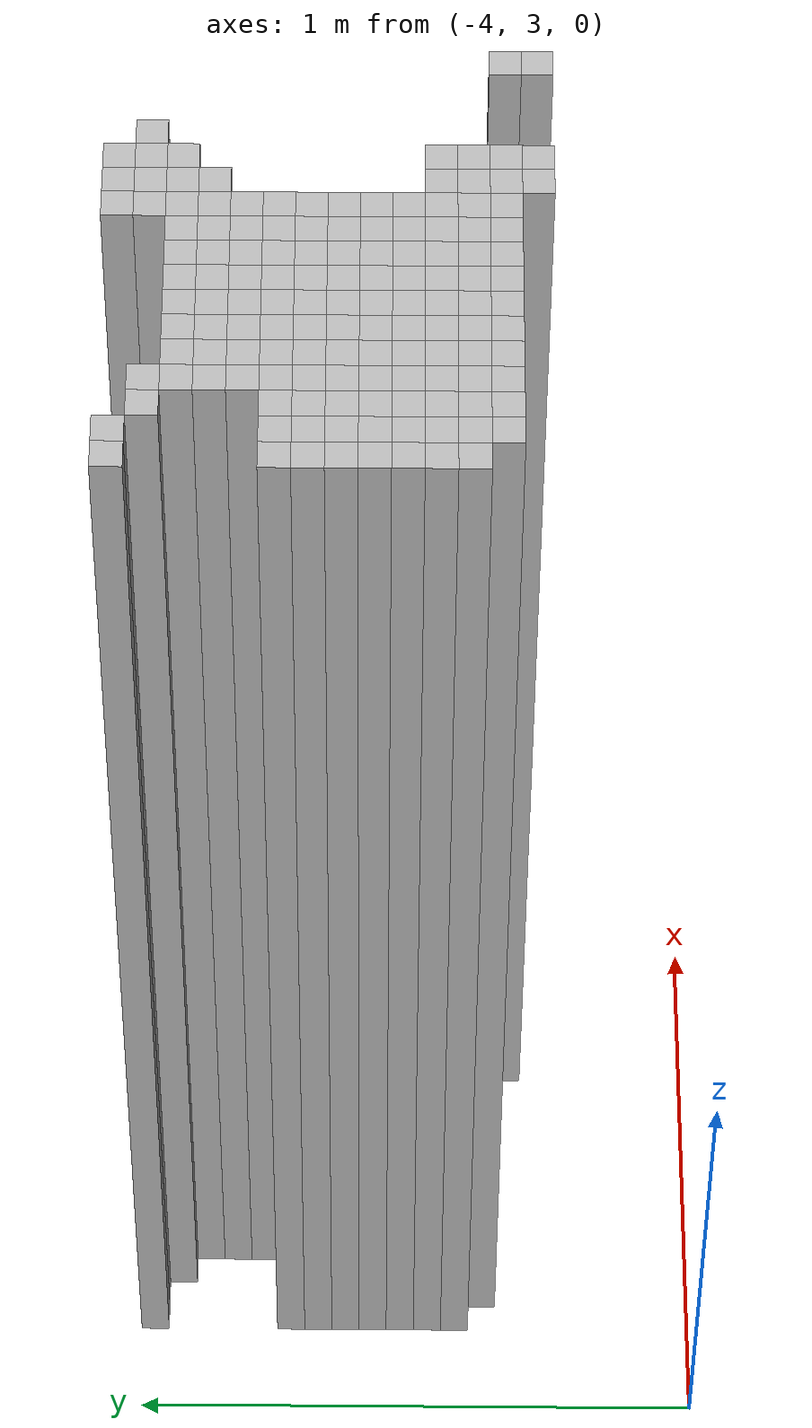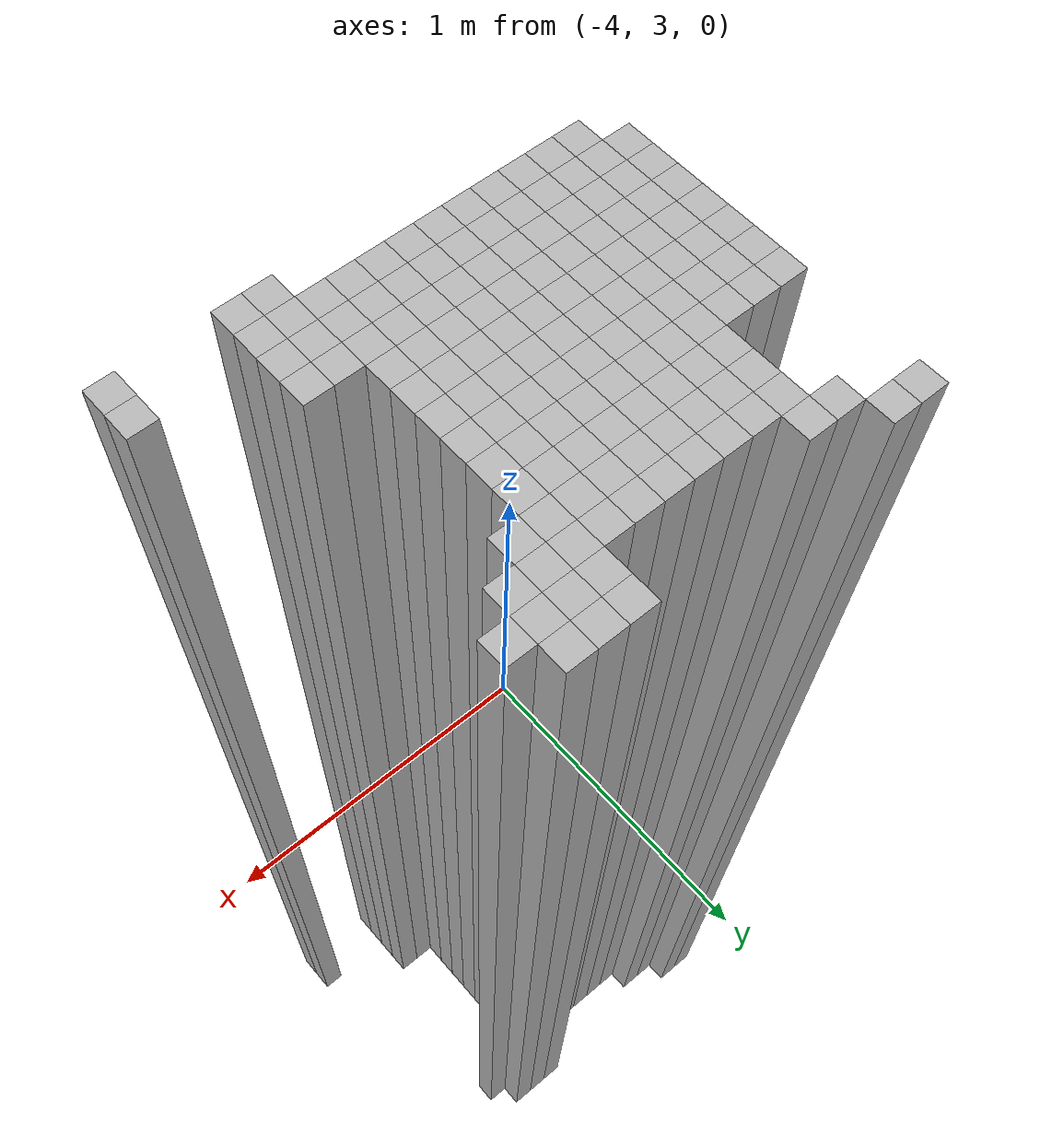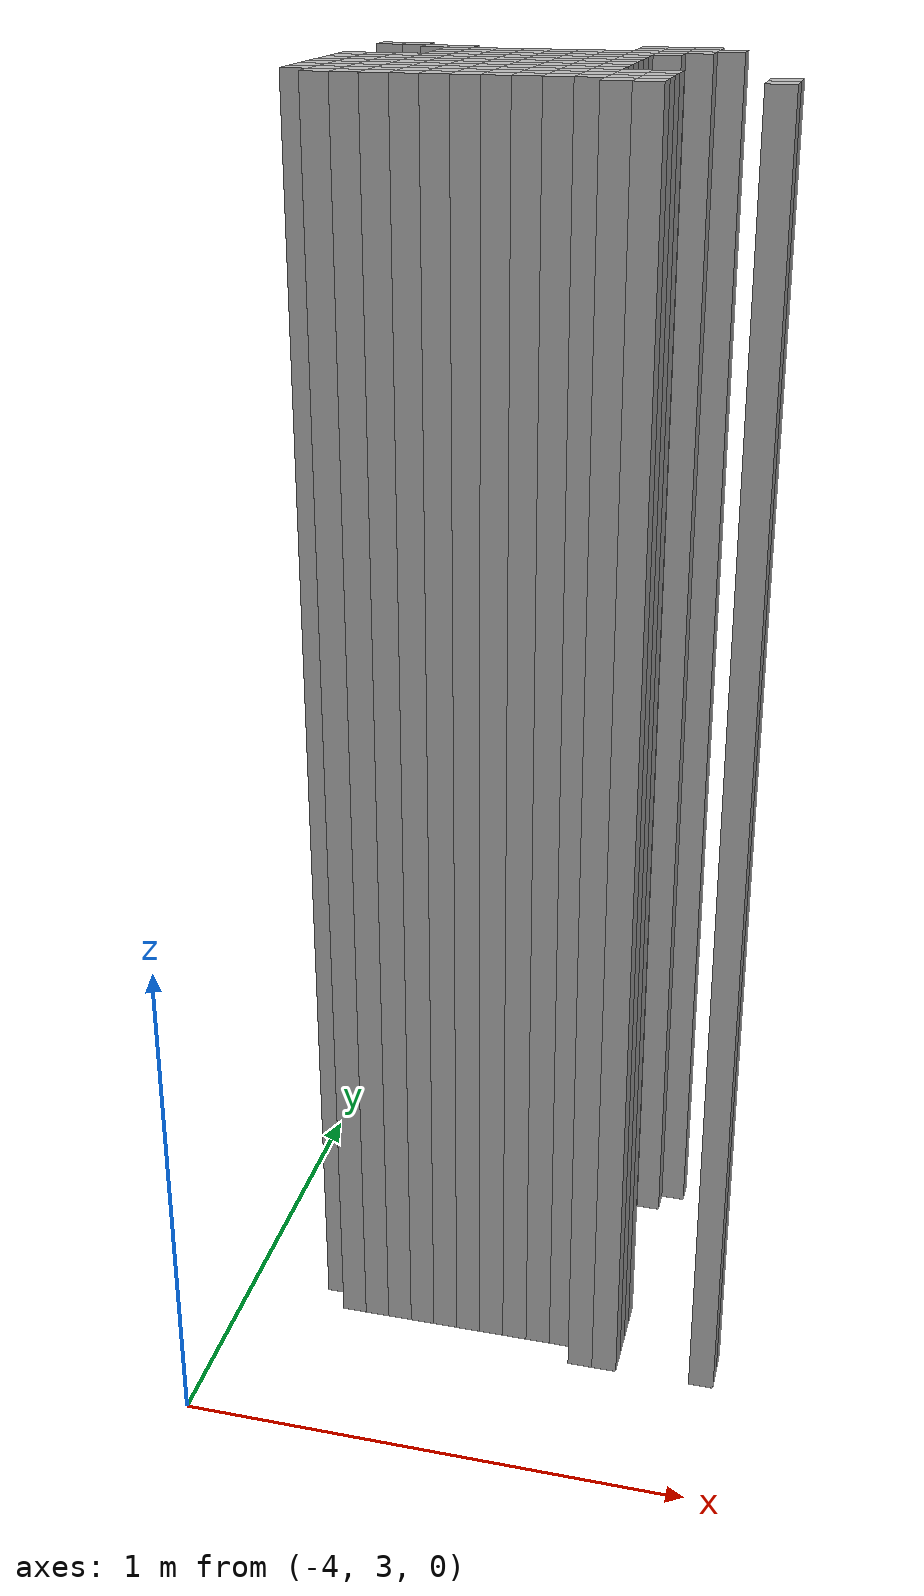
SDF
<sdf version="1.9">
 <world name="map_world">
  <model name="wall_147_74">
   <static>true</static>
   <pose>-3.811 3.980 1.250 0 0 0</pose>
   <link name="link">
    <collision name="collision"><geometry><box><size>0.050 0.050 2.500</size></box></geometry></collision>
    <visual name="visual"><geometry><box><size>0.050 0.050 2.500</size></box></geometry></visual>
   </link>
  </model>
  <model name="wall_148_74">
   <static>true</static>
   <pose>-3.761 3.980 1.250 0 0 0</pose>
   <link name="link">
    <collision name="collision"><geometry><box><size>0.050 0.050 2.500</size></box></geometry></collision>
    <visual name="visual"><geometry><box><size>0.050 0.050 2.500</size></box></geometry></visual>
   </link>
  </model>
  <model name="wall_157_74">
   <static>true</static>
   <pose>-3.311 3.980 1.250 0 0 0</pose>
   <link name="link">
    <collision name="collision"><geometry><box><size>0.050 0.050 2.500</size></box></geometry></collision>
    <visual name="visual"><geometry><box><size>0.050 0.050 2.500</size></box></geometry></visual>
   </link>
  </model>
  <model name="wall_158_74">
   <static>true</static>
   <pose>-3.261 3.980 1.250 0 0 0</pose>
   <link name="link">
    <collision name="collision"><geometry><box><size>0.050 0.050 2.500</size></box></geometry></collision>
    <visual name="visual"><geometry><box><size>0.050 0.050 2.500</size></box></geometry></visual>
   </link>
  </model>
  <model name="wall_159_74">
   <static>true</static>
   <pose>-3.211 3.980 1.250 0 0 0</pose>
   <link name="link">
    <collision name="collision"><geometry><box><size>0.050 0.050 2.500</size></box></geometry></collision>
    <visual name="visual"><geometry><box><size>0.050 0.050 2.500</size></box></geometry></visual>
   </link>
  </model>
  <model name="wall_149_75">
   <static>true</static>
   <pose>-3.711 3.930 1.250 0 0 0</pose>
   <link name="link">
    <collision name="collision"><geometry><box><size>0.050 0.050 2.500</size></box></geometry></collision>
    <visual name="visual"><geometry><box><size>0.050 0.050 2.500</size></box></geometry></visual>
   </link>
  </model>
  <model name="wall_150_75">
   <static>true</static>
   <pose>-3.661 3.930 1.250 0 0 0</pose>
   <link name="link">
    <collision name="collision"><geometry><box><size>0.050 0.050 2.500</size></box></geometry></collision>
    <visual name="visual"><geometry><box><size>0.050 0.050 2.500</size></box></geometry></visual>
   </link>
  </model>
  <model name="wall_157_75">
   <static>true</static>
   <pose>-3.311 3.930 1.250 0 0 0</pose>
   <link name="link">
    <collision name="collision"><geometry><box><size>0.050 0.050 2.500</size></box></geometry></collision>
    <visual name="visual"><geometry><box><size>0.050 0.050 2.500</size></box></geometry></visual>
   </link>
  </model>
  <model name="wall_158_75">
   <static>true</static>
   <pose>-3.261 3.930 1.250 0 0 0</pose>
   <link name="link">
    <collision name="collision"><geometry><box><size>0.050 0.050 2.500</size></box></geometry></collision>
    <visual name="visual"><geometry><box><size>0.050 0.050 2.500</size></box></geometry></visual>
   </link>
  </model>
  <model name="wall_159_75">
   <static>true</static>
   <pose>-3.211 3.930 1.250 0 0 0</pose>
   <link name="link">
    <collision name="collision"><geometry><box><size>0.050 0.050 2.500</size></box></geometry></collision>
    <visual name="visual"><geometry><box><size>0.050 0.050 2.500</size></box></geometry></visual>
   </link>
  </model>
  <model name="wall_160_75">
   <static>true</static>
   <pose>-3.161 3.930 1.250 0 0 0</pose>
   <link name="link">
    <collision name="collision"><geometry><box><size>0.050 0.050 2.500</size></box></geometry></collision>
    <visual name="visual"><geometry><box><size>0.050 0.050 2.500</size></box></geometry></visual>
   </link>
  </model>
  <model name="wall_150_76">
   <static>true</static>
   <pose>-3.661 3.880 1.250 0 0 0</pose>
   <link name="link">
    <collision name="collision"><geometry><box><size>0.050 0.050 2.500</size></box></geometry></collision>
    <visual name="visual"><geometry><box><size>0.050 0.050 2.500</size></box></geometry></visual>
   </link>
  </model>
  <model name="wall_151_76">
   <static>true</static>
   <pose>-3.611 3.880 1.250 0 0 0</pose>
   <link name="link">
    <collision name="collision"><geometry><box><size>0.050 0.050 2.500</size></box></geometry></collision>
    <visual name="visual"><geometry><box><size>0.050 0.050 2.500</size></box></geometry></visual>
   </link>
  </model>
  <model name="wall_152_76">
   <static>true</static>
   <pose>-3.561 3.880 1.250 0 0 0</pose>
   <link name="link">
    <collision name="collision"><geometry><box><size>0.050 0.050 2.500</size></box></geometry></collision>
    <visual name="visual"><geometry><box><size>0.050 0.050 2.500</size></box></geometry></visual>
   </link>
  </model>
  <model name="wall_153_76">
   <static>true</static>
   <pose>-3.511 3.880 1.250 0 0 0</pose>
   <link name="link">
    <collision name="collision"><geometry><box><size>0.050 0.050 2.500</size></box></geometry></collision>
    <visual name="visual"><geometry><box><size>0.050 0.050 2.500</size></box></geometry></visual>
   </link>
  </model>
  <model name="wall_154_76">
   <static>true</static>
   <pose>-3.461 3.880 1.250 0 0 0</pose>
   <link name="link">
    <collision name="collision"><geometry><box><size>0.050 0.050 2.500</size></box></geometry></collision>
    <visual name="visual"><geometry><box><size>0.050 0.050 2.500</size></box></geometry></visual>
   </link>
  </model>
  <model name="wall_155_76">
   <static>true</static>
   <pose>-3.411 3.880 1.250 0 0 0</pose>
   <link name="link">
    <collision name="collision"><geometry><box><size>0.050 0.050 2.500</size></box></geometry></collision>
    <visual name="visual"><geometry><box><size>0.050 0.050 2.500</size></box></geometry></visual>
   </link>
  </model>
  <model name="wall_156_76">
   <static>true</static>
   <pose>-3.361 3.880 1.250 0 0 0</pose>
   <link name="link">
    <collision name="collision"><geometry><box><size>0.050 0.050 2.500</size></box></geometry></collision>
    <visual name="visual"><geometry><box><size>0.050 0.050 2.500</size></box></geometry></visual>
   </link>
  </model>
  <model name="wall_157_76">
   <static>true</static>
   <pose>-3.311 3.880 1.250 0 0 0</pose>
   <link name="link">
    <collision name="collision"><geometry><box><size>0.050 0.050 2.500</size></box></geometry></collision>
    <visual name="visual"><geometry><box><size>0.050 0.050 2.500</size></box></geometry></visual>
   </link>
  </model>
  <model name="wall_158_76">
   <static>true</static>
   <pose>-3.261 3.880 1.250 0 0 0</pose>
   <link name="link">
    <collision name="collision"><geometry><box><size>0.050 0.050 2.500</size></box></geometry></collision>
    <visual name="visual"><geometry><box><size>0.050 0.050 2.500</size></box></geometry></visual>
   </link>
  </model>
  <model name="wall_159_76">
   <static>true</static>
   <pose>-3.211 3.880 1.250 0 0 0</pose>
   <link name="link">
    <collision name="collision"><geometry><box><size>0.050 0.050 2.500</size></box></geometry></collision>
    <visual name="visual"><geometry><box><size>0.050 0.050 2.500</size></box></geometry></visual>
   </link>
  </model>
  <model name="wall_150_77">
   <static>true</static>
   <pose>-3.661 3.830 1.250 0 0 0</pose>
   <link name="link">
    <collision name="collision"><geometry><box><size>0.050 0.050 2.500</size></box></geometry></collision>
    <visual name="visual"><geometry><box><size>0.050 0.050 2.500</size></box></geometry></visual>
   </link>
  </model>
  <model name="wall_151_77">
   <static>true</static>
   <pose>-3.611 3.830 1.250 0 0 0</pose>
   <link name="link">
    <collision name="collision"><geometry><box><size>0.050 0.050 2.500</size></box></geometry></collision>
    <visual name="visual"><geometry><box><size>0.050 0.050 2.500</size></box></geometry></visual>
   </link>
  </model>
  <model name="wall_152_77">
   <static>true</static>
   <pose>-3.561 3.830 1.250 0 0 0</pose>
   <link name="link">
    <collision name="collision"><geometry><box><size>0.050 0.050 2.500</size></box></geometry></collision>
    <visual name="visual"><geometry><box><size>0.050 0.050 2.500</size></box></geometry></visual>
   </link>
  </model>
  <model name="wall_153_77">
   <static>true</static>
   <pose>-3.511 3.830 1.250 0 0 0</pose>
   <link name="link">
    <collision name="collision"><geometry><box><size>0.050 0.050 2.500</size></box></geometry></collision>
    <visual name="visual"><geometry><box><size>0.050 0.050 2.500</size></box></geometry></visual>
   </link>
  </model>
  <model name="wall_154_77">
   <static>true</static>
   <pose>-3.461 3.830 1.250 0 0 0</pose>
   <link name="link">
    <collision name="collision"><geometry><box><size>0.050 0.050 2.500</size></box></geometry></collision>
    <visual name="visual"><geometry><box><size>0.050 0.050 2.500</size></box></geometry></visual>
   </link>
  </model>
  <model name="wall_155_77">
   <static>true</static>
   <pose>-3.411 3.830 1.250 0 0 0</pose>
   <link name="link">
    <collision name="collision"><geometry><box><size>0.050 0.050 2.500</size></box></geometry></collision>
    <visual name="visual"><geometry><box><size>0.050 0.050 2.500</size></box></geometry></visual>
   </link>
  </model>
  <model name="wall_156_77">
   <static>true</static>
   <pose>-3.361 3.830 1.250 0 0 0</pose>
   <link name="link">
    <collision name="collision"><geometry><box><size>0.050 0.050 2.500</size></box></geometry></collision>
    <visual name="visual"><geometry><box><size>0.050 0.050 2.500</size></box></geometry></visual>
   </link>
  </model>
  <model name="wall_157_77">
   <static>true</static>
   <pose>-3.311 3.830 1.250 0 0 0</pose>
   <link name="link">
    <collision name="collision"><geometry><box><size>0.050 0.050 2.500</size></box></geometry></collision>
    <visual name="visual"><geometry><box><size>0.050 0.050 2.500</size></box></geometry></visual>
   </link>
  </model>
  <model name="wall_158_77">
   <static>true</static>
   <pose>-3.261 3.830 1.250 0 0 0</pose>
   <link name="link">
    <collision name="collision"><geometry><box><size>0.050 0.050 2.500</size></box></geometry></collision>
    <visual name="visual"><geometry><box><size>0.050 0.050 2.500</size></box></geometry></visual>
   </link>
  </model>
  <model name="wall_150_78">
   <static>true</static>
   <pose>-3.661 3.780 1.250 0 0 0</pose>
   <link name="link">
    <collision name="collision"><geometry><box><size>0.050 0.050 2.500</size></box></geometry></collision>
    <visual name="visual"><geometry><box><size>0.050 0.050 2.500</size></box></geometry></visual>
   </link>
  </model>
  <model name="wall_151_78">
   <static>true</static>
   <pose>-3.611 3.780 1.250 0 0 0</pose>
   <link name="link">
    <collision name="collision"><geometry><box><size>0.050 0.050 2.500</size></box></geometry></collision>
    <visual name="visual"><geometry><box><size>0.050 0.050 2.500</size></box></geometry></visual>
   </link>
  </model>
  <model name="wall_152_78">
   <static>true</static>
   <pose>-3.561 3.780 1.250 0 0 0</pose>
   <link name="link">
    <collision name="collision"><geometry><box><size>0.050 0.050 2.500</size></box></geometry></collision>
    <visual name="visual"><geometry><box><size>0.050 0.050 2.500</size></box></geometry></visual>
   </link>
  </model>
  <model name="wall_153_78">
   <static>true</static>
   <pose>-3.511 3.780 1.250 0 0 0</pose>
   <link name="link">
    <collision name="collision"><geometry><box><size>0.050 0.050 2.500</size></box></geometry></collision>
    <visual name="visual"><geometry><box><size>0.050 0.050 2.500</size></box></geometry></visual>
   </link>
  </model>
  <model name="wall_154_78">
   <static>true</static>
   <pose>-3.461 3.780 1.250 0 0 0</pose>
   <link name="link">
    <collision name="collision"><geometry><box><size>0.050 0.050 2.500</size></box></geometry></collision>
    <visual name="visual"><geometry><box><size>0.050 0.050 2.500</size></box></geometry></visual>
   </link>
  </model>
  <model name="wall_155_78">
   <static>true</static>
   <pose>-3.411 3.780 1.250 0 0 0</pose>
   <link name="link">
    <collision name="collision"><geometry><box><size>0.050 0.050 2.500</size></box></geometry></collision>
    <visual name="visual"><geometry><box><size>0.050 0.050 2.500</size></box></geometry></visual>
   </link>
  </model>
  <model name="wall_156_78">
   <static>true</static>
   <pose>-3.361 3.780 1.250 0 0 0</pose>
   <link name="link">
    <collision name="collision"><geometry><box><size>0.050 0.050 2.500</size></box></geometry></collision>
    <visual name="visual"><geometry><box><size>0.050 0.050 2.500</size></box></geometry></visual>
   </link>
  </model>
  <model name="wall_157_78">
   <static>true</static>
   <pose>-3.311 3.780 1.250 0 0 0</pose>
   <link name="link">
    <collision name="collision"><geometry><box><size>0.050 0.050 2.500</size></box></geometry></collision>
    <visual name="visual"><geometry><box><size>0.050 0.050 2.500</size></box></geometry></visual>
   </link>
  </model>
  <model name="wall_147_79">
   <static>true</static>
   <pose>-3.811 3.730 1.250 0 0 0</pose>
   <link name="link">
    <collision name="collision"><geometry><box><size>0.050 0.050 2.500</size></box></geometry></collision>
    <visual name="visual"><geometry><box><size>0.050 0.050 2.500</size></box></geometry></visual>
   </link>
  </model>
  <model name="wall_148_79">
   <static>true</static>
   <pose>-3.761 3.730 1.250 0 0 0</pose>
   <link name="link">
    <collision name="collision"><geometry><box><size>0.050 0.050 2.500</size></box></geometry></collision>
    <visual name="visual"><geometry><box><size>0.050 0.050 2.500</size></box></geometry></visual>
   </link>
  </model>
  <model name="wall_149_79">
   <static>true</static>
   <pose>-3.711 3.730 1.250 0 0 0</pose>
   <link name="link">
    <collision name="collision"><geometry><box><size>0.050 0.050 2.500</size></box></geometry></collision>
    <visual name="visual"><geometry><box><size>0.050 0.050 2.500</size></box></geometry></visual>
   </link>
  </model>
  <model name="wall_150_79">
   <static>true</static>
   <pose>-3.661 3.730 1.250 0 0 0</pose>
   <link name="link">
    <collision name="collision"><geometry><box><size>0.050 0.050 2.500</size></box></geometry></collision>
    <visual name="visual"><geometry><box><size>0.050 0.050 2.500</size></box></geometry></visual>
   </link>
  </model>
  <model name="wall_151_79">
   <static>true</static>
   <pose>-3.611 3.730 1.250 0 0 0</pose>
   <link name="link">
    <collision name="collision"><geometry><box><size>0.050 0.050 2.500</size></box></geometry></collision>
    <visual name="visual"><geometry><box><size>0.050 0.050 2.500</size></box></geometry></visual>
   </link>
  </model>
  <model name="wall_152_79">
   <static>true</static>
   <pose>-3.561 3.730 1.250 0 0 0</pose>
   <link name="link">
    <collision name="collision"><geometry><box><size>0.050 0.050 2.500</size></box></geometry></collision>
    <visual name="visual"><geometry><box><size>0.050 0.050 2.500</size></box></geometry></visual>
   </link>
  </model>
  <model name="wall_153_79">
   <static>true</static>
   <pose>-3.511 3.730 1.250 0 0 0</pose>
   <link name="link">
    <collision name="collision"><geometry><box><size>0.050 0.050 2.500</size></box></geometry></collision>
    <visual name="visual"><geometry><box><size>0.050 0.050 2.500</size></box></geometry></visual>
   </link>
  </model>
  <model name="wall_154_79">
   <static>true</static>
   <pose>-3.461 3.730 1.250 0 0 0</pose>
   <link name="link">
    <collision name="collision"><geometry><box><size>0.050 0.050 2.500</size></box></geometry></collision>
    <visual name="visual"><geometry><box><size>0.050 0.050 2.500</size></box></geometry></visual>
   </link>
  </model>
  <model name="wall_155_79">
   <static>true</static>
   <pose>-3.411 3.730 1.250 0 0 0</pose>
   <link name="link">
    <collision name="collision"><geometry><box><size>0.050 0.050 2.500</size></box></geometry></collision>
    <visual name="visual"><geometry><box><size>0.050 0.050 2.500</size></box></geometry></visual>
   </link>
  </model>
  <model name="wall_156_79">
   <static>true</static>
   <pose>-3.361 3.730 1.250 0 0 0</pose>
   <link name="link">
    <collision name="collision"><geometry><box><size>0.050 0.050 2.500</size></box></geometry></collision>
    <visual name="visual"><geometry><box><size>0.050 0.050 2.500</size></box></geometry></visual>
   </link>
  </model>
  <model name="wall_157_79">
   <static>true</static>
   <pose>-3.311 3.730 1.250 0 0 0</pose>
   <link name="link">
    <collision name="collision"><geometry><box><size>0.050 0.050 2.500</size></box></geometry></collision>
    <visual name="visual"><geometry><box><size>0.050 0.050 2.500</size></box></geometry></visual>
   </link>
  </model>
  <model name="wall_147_80">
   <static>true</static>
   <pose>-3.811 3.680 1.250 0 0 0</pose>
   <link name="link">
    <collision name="collision"><geometry><box><size>0.050 0.050 2.500</size></box></geometry></collision>
    <visual name="visual"><geometry><box><size>0.050 0.050 2.500</size></box></geometry></visual>
   </link>
  </model>
  <model name="wall_148_80">
   <static>true</static>
   <pose>-3.761 3.680 1.250 0 0 0</pose>
   <link name="link">
    <collision name="collision"><geometry><box><size>0.050 0.050 2.500</size></box></geometry></collision>
    <visual name="visual"><geometry><box><size>0.050 0.050 2.500</size></box></geometry></visual>
   </link>
  </model>
  <model name="wall_149_80">
   <static>true</static>
   <pose>-3.711 3.680 1.250 0 0 0</pose>
   <link name="link">
    <collision name="collision"><geometry><box><size>0.050 0.050 2.500</size></box></geometry></collision>
    <visual name="visual"><geometry><box><size>0.050 0.050 2.500</size></box></geometry></visual>
   </link>
  </model>
  <model name="wall_150_80">
   <static>true</static>
   <pose>-3.661 3.680 1.250 0 0 0</pose>
   <link name="link">
    <collision name="collision"><geometry><box><size>0.050 0.050 2.500</size></box></geometry></collision>
    <visual name="visual"><geometry><box><size>0.050 0.050 2.500</size></box></geometry></visual>
   </link>
  </model>
  <model name="wall_151_80">
   <static>true</static>
   <pose>-3.611 3.680 1.250 0 0 0</pose>
   <link name="link">
    <collision name="collision"><geometry><box><size>0.050 0.050 2.500</size></box></geometry></collision>
    <visual name="visual"><geometry><box><size>0.050 0.050 2.500</size></box></geometry></visual>
   </link>
  </model>
  <model name="wall_152_80">
   <static>true</static>
   <pose>-3.561 3.680 1.250 0 0 0</pose>
   <link name="link">
    <collision name="collision"><geometry><box><size>0.050 0.050 2.500</size></box></geometry></collision>
    <visual name="visual"><geometry><box><size>0.050 0.050 2.500</size></box></geometry></visual>
   </link>
  </model>
  <model name="wall_153_80">
   <static>true</static>
   <pose>-3.511 3.680 1.250 0 0 0</pose>
   <link name="link">
    <collision name="collision"><geometry><box><size>0.050 0.050 2.500</size></box></geometry></collision>
    <visual name="visual"><geometry><box><size>0.050 0.050 2.500</size></box></geometry></visual>
   </link>
  </model>
  <model name="wall_154_80">
   <static>true</static>
   <pose>-3.461 3.680 1.250 0 0 0</pose>
   <link name="link">
    <collision name="collision"><geometry><box><size>0.050 0.050 2.500</size></box></geometry></collision>
    <visual name="visual"><geometry><box><size>0.050 0.050 2.500</size></box></geometry></visual>
   </link>
  </model>
  <model name="wall_155_80">
   <static>true</static>
   <pose>-3.411 3.680 1.250 0 0 0</pose>
   <link name="link">
    <collision name="collision"><geometry><box><size>0.050 0.050 2.500</size></box></geometry></collision>
    <visual name="visual"><geometry><box><size>0.050 0.050 2.500</size></box></geometry></visual>
   </link>
  </model>
  <model name="wall_156_80">
   <static>true</static>
   <pose>-3.361 3.680 1.250 0 0 0</pose>
   <link name="link">
    <collision name="collision"><geometry><box><size>0.050 0.050 2.500</size></box></geometry></collision>
    <visual name="visual"><geometry><box><size>0.050 0.050 2.500</size></box></geometry></visual>
   </link>
  </model>
  <model name="wall_157_80">
   <static>true</static>
   <pose>-3.311 3.680 1.250 0 0 0</pose>
   <link name="link">
    <collision name="collision"><geometry><box><size>0.050 0.050 2.500</size></box></geometry></collision>
    <visual name="visual"><geometry><box><size>0.050 0.050 2.500</size></box></geometry></visual>
   </link>
  </model>
  <model name="wall_147_81">
   <static>true</static>
   <pose>-3.811 3.630 1.250 0 0 0</pose>
   <link name="link">
    <collision name="collision"><geometry><box><size>0.050 0.050 2.500</size></box></geometry></collision>
    <visual name="visual"><geometry><box><size>0.050 0.050 2.500</size></box></geometry></visual>
   </link>
  </model>
  <model name="wall_148_81">
   <static>true</static>
   <pose>-3.761 3.630 1.250 0 0 0</pose>
   <link name="link">
    <collision name="collision"><geometry><box><size>0.050 0.050 2.500</size></box></geometry></collision>
    <visual name="visual"><geometry><box><size>0.050 0.050 2.500</size></box></geometry></visual>
   </link>
  </model>
  <model name="wall_149_81">
   <static>true</static>
   <pose>-3.711 3.630 1.250 0 0 0</pose>
   <link name="link">
    <collision name="collision"><geometry><box><size>0.050 0.050 2.500</size></box></geometry></collision>
    <visual name="visual"><geometry><box><size>0.050 0.050 2.500</size></box></geometry></visual>
   </link>
  </model>
  <model name="wall_150_81">
   <static>true</static>
   <pose>-3.661 3.630 1.250 0 0 0</pose>
   <link name="link">
    <collision name="collision"><geometry><box><size>0.050 0.050 2.500</size></box></geometry></collision>
    <visual name="visual"><geometry><box><size>0.050 0.050 2.500</size></box></geometry></visual>
   </link>
  </model>
  <model name="wall_151_81">
   <static>true</static>
   <pose>-3.611 3.630 1.250 0 0 0</pose>
   <link name="link">
    <collision name="collision"><geometry><box><size>0.050 0.050 2.500</size></box></geometry></collision>
    <visual name="visual"><geometry><box><size>0.050 0.050 2.500</size></box></geometry></visual>
   </link>
  </model>
  <model name="wall_152_81">
   <static>true</static>
   <pose>-3.561 3.630 1.250 0 0 0</pose>
   <link name="link">
    <collision name="collision"><geometry><box><size>0.050 0.050 2.500</size></box></geometry></collision>
    <visual name="visual"><geometry><box><size>0.050 0.050 2.500</size></box></geometry></visual>
   </link>
  </model>
  <model name="wall_153_81">
   <static>true</static>
   <pose>-3.511 3.630 1.250 0 0 0</pose>
   <link name="link">
    <collision name="collision"><geometry><box><size>0.050 0.050 2.500</size></box></geometry></collision>
    <visual name="visual"><geometry><box><size>0.050 0.050 2.500</size></box></geometry></visual>
   </link>
  </model>
  <model name="wall_154_81">
   <static>true</static>
   <pose>-3.461 3.630 1.250 0 0 0</pose>
   <link name="link">
    <collision name="collision"><geometry><box><size>0.050 0.050 2.500</size></box></geometry></collision>
    <visual name="visual"><geometry><box><size>0.050 0.050 2.500</size></box></geometry></visual>
   </link>
  </model>
  <model name="wall_155_81">
   <static>true</static>
   <pose>-3.411 3.630 1.250 0 0 0</pose>
   <link name="link">
    <collision name="collision"><geometry><box><size>0.050 0.050 2.500</size></box></geometry></collision>
    <visual name="visual"><geometry><box><size>0.050 0.050 2.500</size></box></geometry></visual>
   </link>
  </model>
  <model name="wall_156_81">
   <static>true</static>
   <pose>-3.361 3.630 1.250 0 0 0</pose>
   <link name="link">
    <collision name="collision"><geometry><box><size>0.050 0.050 2.500</size></box></geometry></collision>
    <visual name="visual"><geometry><box><size>0.050 0.050 2.500</size></box></geometry></visual>
   </link>
  </model>
  <model name="wall_157_81">
   <static>true</static>
   <pose>-3.311 3.630 1.250 0 0 0</pose>
   <link name="link">
    <collision name="collision"><geometry><box><size>0.050 0.050 2.500</size></box></geometry></collision>
    <visual name="visual"><geometry><box><size>0.050 0.050 2.500</size></box></geometry></visual>
   </link>
  </model>
  <model name="wall_147_82">
   <static>true</static>
   <pose>-3.811 3.580 1.250 0 0 0</pose>
   <link name="link">
    <collision name="collision"><geometry><box><size>0.050 0.050 2.500</size></box></geometry></collision>
    <visual name="visual"><geometry><box><size>0.050 0.050 2.500</size></box></geometry></visual>
   </link>
  </model>
  <model name="wall_148_82">
   <static>true</static>
   <pose>-3.761 3.580 1.250 0 0 0</pose>
   <link name="link">
    <collision name="collision"><geometry><box><size>0.050 0.050 2.500</size></box></geometry></collision>
    <visual name="visual"><geometry><box><size>0.050 0.050 2.500</size></box></geometry></visual>
   </link>
  </model>
  <model name="wall_149_82">
   <static>true</static>
   <pose>-3.711 3.580 1.250 0 0 0</pose>
   <link name="link">
    <collision name="collision"><geometry><box><size>0.050 0.050 2.500</size></box></geometry></collision>
    <visual name="visual"><geometry><box><size>0.050 0.050 2.500</size></box></geometry></visual>
   </link>
  </model>
  <model name="wall_150_82">
   <static>true</static>
   <pose>-3.661 3.580 1.250 0 0 0</pose>
   <link name="link">
    <collision name="collision"><geometry><box><size>0.050 0.050 2.500</size></box></geometry></collision>
    <visual name="visual"><geometry><box><size>0.050 0.050 2.500</size></box></geometry></visual>
   </link>
  </model>
  <model name="wall_151_82">
   <static>true</static>
   <pose>-3.611 3.580 1.250 0 0 0</pose>
   <link name="link">
    <collision name="collision"><geometry><box><size>0.050 0.050 2.500</size></box></geometry></collision>
    <visual name="visual"><geometry><box><size>0.050 0.050 2.500</size></box></geometry></visual>
   </link>
  </model>
  <model name="wall_152_82">
   <static>true</static>
   <pose>-3.561 3.580 1.250 0 0 0</pose>
   <link name="link">
    <collision name="collision"><geometry><box><size>0.050 0.050 2.500</size></box></geometry></collision>
    <visual name="visual"><geometry><box><size>0.050 0.050 2.500</size></box></geometry></visual>
   </link>
  </model>
  <model name="wall_153_82">
   <static>true</static>
   <pose>-3.511 3.580 1.250 0 0 0</pose>
   <link name="link">
    <collision name="collision"><geometry><box><size>0.050 0.050 2.500</size></box></geometry></collision>
    <visual name="visual"><geometry><box><size>0.050 0.050 2.500</size></box></geometry></visual>
   </link>
  </model>
  <model name="wall_154_82">
   <static>true</static>
   <pose>-3.461 3.580 1.250 0 0 0</pose>
   <link name="link">
    <collision name="collision"><geometry><box><size>0.050 0.050 2.500</size></box></geometry></collision>
    <visual name="visual"><geometry><box><size>0.050 0.050 2.500</size></box></geometry></visual>
   </link>
  </model>
  <model name="wall_155_82">
   <static>true</static>
   <pose>-3.411 3.580 1.250 0 0 0</pose>
   <link name="link">
    <collision name="collision"><geometry><box><size>0.050 0.050 2.500</size></box></geometry></collision>
    <visual name="visual"><geometry><box><size>0.050 0.050 2.500</size></box></geometry></visual>
   </link>
  </model>
  <model name="wall_156_82">
   <static>true</static>
   <pose>-3.361 3.580 1.250 0 0 0</pose>
   <link name="link">
    <collision name="collision"><geometry><box><size>0.050 0.050 2.500</size></box></geometry></collision>
    <visual name="visual"><geometry><box><size>0.050 0.050 2.500</size></box></geometry></visual>
   </link>
  </model>
  <model name="wall_157_82">
   <static>true</static>
   <pose>-3.311 3.580 1.250 0 0 0</pose>
   <link name="link">
    <collision name="collision"><geometry><box><size>0.050 0.050 2.500</size></box></geometry></collision>
    <visual name="visual"><geometry><box><size>0.050 0.050 2.500</size></box></geometry></visual>
   </link>
  </model>
  <model name="wall_147_83">
   <static>true</static>
   <pose>-3.811 3.530 1.250 0 0 0</pose>
   <link name="link">
    <collision name="collision"><geometry><box><size>0.050 0.050 2.500</size></box></geometry></collision>
    <visual name="visual"><geometry><box><size>0.050 0.050 2.500</size></box></geometry></visual>
   </link>
  </model>
  <model name="wall_148_83">
   <static>true</static>
   <pose>-3.761 3.530 1.250 0 0 0</pose>
   <link name="link">
    <collision name="collision"><geometry><box><size>0.050 0.050 2.500</size></box></geometry></collision>
    <visual name="visual"><geometry><box><size>0.050 0.050 2.500</size></box></geometry></visual>
   </link>
  </model>
  <model name="wall_149_83">
   <static>true</static>
   <pose>-3.711 3.530 1.250 0 0 0</pose>
   <link name="link">
    <collision name="collision"><geometry><box><size>0.050 0.050 2.500</size></box></geometry></collision>
    <visual name="visual"><geometry><box><size>0.050 0.050 2.500</size></box></geometry></visual>
   </link>
  </model>
  <model name="wall_150_83">
   <static>true</static>
   <pose>-3.661 3.530 1.250 0 0 0</pose>
   <link name="link">
    <collision name="collision"><geometry><box><size>0.050 0.050 2.500</size></box></geometry></collision>
    <visual name="visual"><geometry><box><size>0.050 0.050 2.500</size></box></geometry></visual>
   </link>
  </model>
  <model name="wall_151_83">
   <static>true</static>
   <pose>-3.611 3.530 1.250 0 0 0</pose>
   <link name="link">
    <collision name="collision"><geometry><box><size>0.050 0.050 2.500</size></box></geometry></collision>
    <visual name="visual"><geometry><box><size>0.050 0.050 2.500</size></box></geometry></visual>
   </link>
  </model>
  <model name="wall_152_83">
   <static>true</static>
   <pose>-3.561 3.530 1.250 0 0 0</pose>
   <link name="link">
    <collision name="collision"><geometry><box><size>0.050 0.050 2.500</size></box></geometry></collision>
    <visual name="visual"><geometry><box><size>0.050 0.050 2.500</size></box></geometry></visual>
   </link>
  </model>
  <model name="wall_153_83">
   <static>true</static>
   <pose>-3.511 3.530 1.250 0 0 0</pose>
   <link name="link">
    <collision name="collision"><geometry><box><size>0.050 0.050 2.500</size></box></geometry></collision>
    <visual name="visual"><geometry><box><size>0.050 0.050 2.500</size></box></geometry></visual>
   </link>
  </model>
  <model name="wall_154_83">
   <static>true</static>
   <pose>-3.461 3.530 1.250 0 0 0</pose>
   <link name="link">
    <collision name="collision"><geometry><box><size>0.050 0.050 2.500</size></box></geometry></collision>
    <visual name="visual"><geometry><box><size>0.050 0.050 2.500</size></box></geometry></visual>
   </link>
  </model>
  <model name="wall_155_83">
   <static>true</static>
   <pose>-3.411 3.530 1.250 0 0 0</pose>
   <link name="link">
    <collision name="collision"><geometry><box><size>0.050 0.050 2.500</size></box></geometry></collision>
    <visual name="visual"><geometry><box><size>0.050 0.050 2.500</size></box></geometry></visual>
   </link>
  </model>
  <model name="wall_156_83">
   <static>true</static>
   <pose>-3.361 3.530 1.250 0 0 0</pose>
   <link name="link">
    <collision name="collision"><geometry><box><size>0.050 0.050 2.500</size></box></geometry></collision>
    <visual name="visual"><geometry><box><size>0.050 0.050 2.500</size></box></geometry></visual>
   </link>
  </model>
  <model name="wall_157_83">
   <static>true</static>
   <pose>-3.311 3.530 1.250 0 0 0</pose>
   <link name="link">
    <collision name="collision"><geometry><box><size>0.050 0.050 2.500</size></box></geometry></collision>
    <visual name="visual"><geometry><box><size>0.050 0.050 2.500</size></box></geometry></visual>
   </link>
  </model>
  <model name="wall_147_84">
   <static>true</static>
   <pose>-3.811 3.480 1.250 0 0 0</pose>
   <link name="link">
    <collision name="collision"><geometry><box><size>0.050 0.050 2.500</size></box></geometry></collision>
    <visual name="visual"><geometry><box><size>0.050 0.050 2.500</size></box></geometry></visual>
   </link>
  </model>
  <model name="wall_148_84">
   <static>true</static>
   <pose>-3.761 3.480 1.250 0 0 0</pose>
   <link name="link">
    <collision name="collision"><geometry><box><size>0.050 0.050 2.500</size></box></geometry></collision>
    <visual name="visual"><geometry><box><size>0.050 0.050 2.500</size></box></geometry></visual>
   </link>
  </model>
  <model name="wall_149_84">
   <static>true</static>
   <pose>-3.711 3.480 1.250 0 0 0</pose>
   <link name="link">
    <collision name="collision"><geometry><box><size>0.050 0.050 2.500</size></box></geometry></collision>
    <visual name="visual"><geometry><box><size>0.050 0.050 2.500</size></box></geometry></visual>
   </link>
  </model>
  <model name="wall_150_84">
   <static>true</static>
   <pose>-3.661 3.480 1.250 0 0 0</pose>
   <link name="link">
    <collision name="collision"><geometry><box><size>0.050 0.050 2.500</size></box></geometry></collision>
    <visual name="visual"><geometry><box><size>0.050 0.050 2.500</size></box></geometry></visual>
   </link>
  </model>
  <model name="wall_151_84">
   <static>true</static>
   <pose>-3.611 3.480 1.250 0 0 0</pose>
   <link name="link">
    <collision name="collision"><geometry><box><size>0.050 0.050 2.500</size></box></geometry></collision>
    <visual name="visual"><geometry><box><size>0.050 0.050 2.500</size></box></geometry></visual>
   </link>
  </model>
  <model name="wall_152_84">
   <static>true</static>
   <pose>-3.561 3.480 1.250 0 0 0</pose>
   <link name="link">
    <collision name="collision"><geometry><box><size>0.050 0.050 2.500</size></box></geometry></collision>
    <visual name="visual"><geometry><box><size>0.050 0.050 2.500</size></box></geometry></visual>
   </link>
  </model>
  <model name="wall_153_84">
   <static>true</static>
   <pose>-3.511 3.480 1.250 0 0 0</pose>
   <link name="link">
    <collision name="collision"><geometry><box><size>0.050 0.050 2.500</size></box></geometry></collision>
    <visual name="visual"><geometry><box><size>0.050 0.050 2.500</size></box></geometry></visual>
   </link>
  </model>
  <model name="wall_154_84">
   <static>true</static>
   <pose>-3.461 3.480 1.250 0 0 0</pose>
   <link name="link">
    <collision name="collision"><geometry><box><size>0.050 0.050 2.500</size></box></geometry></collision>
    <visual name="visual"><geometry><box><size>0.050 0.050 2.500</size></box></geometry></visual>
   </link>
  </model>
  <model name="wall_155_84">
   <static>true</static>
   <pose>-3.411 3.480 1.250 0 0 0</pose>
   <link name="link">
    <collision name="collision"><geometry><box><size>0.050 0.050 2.500</size></box></geometry></collision>
    <visual name="visual"><geometry><box><size>0.050 0.050 2.500</size></box></geometry></visual>
   </link>
  </model>
  <model name="wall_156_84">
   <static>true</static>
   <pose>-3.361 3.480 1.250 0 0 0</pose>
   <link name="link">
    <collision name="collision"><geometry><box><size>0.050 0.050 2.500</size></box></geometry></collision>
    <visual name="visual"><geometry><box><size>0.050 0.050 2.500</size></box></geometry></visual>
   </link>
  </model>
  <model name="wall_157_84">
   <static>true</static>
   <pose>-3.311 3.480 1.250 0 0 0</pose>
   <link name="link">
    <collision name="collision"><geometry><box><size>0.050 0.050 2.500</size></box></geometry></collision>
    <visual name="visual"><geometry><box><size>0.050 0.050 2.500</size></box></geometry></visual>
   </link>
  </model>
  <model name="wall_158_84">
   <static>true</static>
   <pose>-3.261 3.480 1.250 0 0 0</pose>
   <link name="link">
    <collision name="collision"><geometry><box><size>0.050 0.050 2.500</size></box></geometry></collision>
    <visual name="visual"><geometry><box><size>0.050 0.050 2.500</size></box></geometry></visual>
   </link>
  </model>
  <model name="wall_159_84">
   <static>true</static>
   <pose>-3.211 3.480 1.250 0 0 0</pose>
   <link name="link">
    <collision name="collision"><geometry><box><size>0.050 0.050 2.500</size></box></geometry></collision>
    <visual name="visual"><geometry><box><size>0.050 0.050 2.500</size></box></geometry></visual>
   </link>
  </model>
  <model name="wall_147_85">
   <static>true</static>
   <pose>-3.811 3.430 1.250 0 0 0</pose>
   <link name="link">
    <collision name="collision"><geometry><box><size>0.050 0.050 2.500</size></box></geometry></collision>
    <visual name="visual"><geometry><box><size>0.050 0.050 2.500</size></box></geometry></visual>
   </link>
  </model>
  <model name="wall_148_85">
   <static>true</static>
   <pose>-3.761 3.430 1.250 0 0 0</pose>
   <link name="link">
    <collision name="collision"><geometry><box><size>0.050 0.050 2.500</size></box></geometry></collision>
    <visual name="visual"><geometry><box><size>0.050 0.050 2.500</size></box></geometry></visual>
   </link>
  </model>
  <model name="wall_149_85">
   <static>true</static>
   <pose>-3.711 3.430 1.250 0 0 0</pose>
   <link name="link">
    <collision name="collision"><geometry><box><size>0.050 0.050 2.500</size></box></geometry></collision>
    <visual name="visual"><geometry><box><size>0.050 0.050 2.500</size></box></geometry></visual>
   </link>
  </model>
  <model name="wall_150_85">
   <static>true</static>
   <pose>-3.661 3.430 1.250 0 0 0</pose>
   <link name="link">
    <collision name="collision"><geometry><box><size>0.050 0.050 2.500</size></box></geometry></collision>
    <visual name="visual"><geometry><box><size>0.050 0.050 2.500</size></box></geometry></visual>
   </link>
  </model>
  <model name="wall_151_85">
   <static>true</static>
   <pose>-3.611 3.430 1.250 0 0 0</pose>
   <link name="link">
    <collision name="collision"><geometry><box><size>0.050 0.050 2.500</size></box></geometry></collision>
    <visual name="visual"><geometry><box><size>0.050 0.050 2.500</size></box></geometry></visual>
   </link>
  </model>
  <model name="wall_152_85">
   <static>true</static>
   <pose>-3.561 3.430 1.250 0 0 0</pose>
   <link name="link">
    <collision name="collision"><geometry><box><size>0.050 0.050 2.500</size></box></geometry></collision>
    <visual name="visual"><geometry><box><size>0.050 0.050 2.500</size></box></geometry></visual>
   </link>
  </model>
  <model name="wall_153_85">
   <static>true</static>
   <pose>-3.511 3.430 1.250 0 0 0</pose>
   <link name="link">
    <collision name="collision"><geometry><box><size>0.050 0.050 2.500</size></box></geometry></collision>
    <visual name="visual"><geometry><box><size>0.050 0.050 2.500</size></box></geometry></visual>
   </link>
  </model>
  <model name="wall_154_85">
   <static>true</static>
   <pose>-3.461 3.430 1.250 0 0 0</pose>
   <link name="link">
    <collision name="collision"><geometry><box><size>0.050 0.050 2.500</size></box></geometry></collision>
    <visual name="visual"><geometry><box><size>0.050 0.050 2.500</size></box></geometry></visual>
   </link>
  </model>
  <model name="wall_155_85">
   <static>true</static>
   <pose>-3.411 3.430 1.250 0 0 0</pose>
   <link name="link">
    <collision name="collision"><geometry><box><size>0.050 0.050 2.500</size></box></geometry></collision>
    <visual name="visual"><geometry><box><size>0.050 0.050 2.500</size></box></geometry></visual>
   </link>
  </model>
  <model name="wall_156_85">
   <static>true</static>
   <pose>-3.361 3.430 1.250 0 0 0</pose>
   <link name="link">
    <collision name="collision"><geometry><box><size>0.050 0.050 2.500</size></box></geometry></collision>
    <visual name="visual"><geometry><box><size>0.050 0.050 2.500</size></box></geometry></visual>
   </link>
  </model>
  <model name="wall_157_85">
   <static>true</static>
   <pose>-3.311 3.430 1.250 0 0 0</pose>
   <link name="link">
    <collision name="collision"><geometry><box><size>0.050 0.050 2.500</size></box></geometry></collision>
    <visual name="visual"><geometry><box><size>0.050 0.050 2.500</size></box></geometry></visual>
   </link>
  </model>
  <model name="wall_158_85">
   <static>true</static>
   <pose>-3.261 3.430 1.250 0 0 0</pose>
   <link name="link">
    <collision name="collision"><geometry><box><size>0.050 0.050 2.500</size></box></geometry></collision>
    <visual name="visual"><geometry><box><size>0.050 0.050 2.500</size></box></geometry></visual>
   </link>
  </model>
  <model name="wall_159_85">
   <static>true</static>
   <pose>-3.211 3.430 1.250 0 0 0</pose>
   <link name="link">
    <collision name="collision"><geometry><box><size>0.050 0.050 2.500</size></box></geometry></collision>
    <visual name="visual"><geometry><box><size>0.050 0.050 2.500</size></box></geometry></visual>
   </link>
  </model>
  <model name="wall_148_86">
   <static>true</static>
   <pose>-3.761 3.380 1.250 0 0 0</pose>
   <link name="link">
    <collision name="collision"><geometry><box><size>0.050 0.050 2.500</size></box></geometry></collision>
    <visual name="visual"><geometry><box><size>0.050 0.050 2.500</size></box></geometry></visual>
   </link>
  </model>
  <model name="wall_149_86">
   <static>true</static>
   <pose>-3.711 3.380 1.250 0 0 0</pose>
   <link name="link">
    <collision name="collision"><geometry><box><size>0.050 0.050 2.500</size></box></geometry></collision>
    <visual name="visual"><geometry><box><size>0.050 0.050 2.500</size></box></geometry></visual>
   </link>
  </model>
  <model name="wall_150_86">
   <static>true</static>
   <pose>-3.661 3.380 1.250 0 0 0</pose>
   <link name="link">
    <collision name="collision"><geometry><box><size>0.050 0.050 2.500</size></box></geometry></collision>
    <visual name="visual"><geometry><box><size>0.050 0.050 2.500</size></box></geometry></visual>
   </link>
  </model>
  <model name="wall_151_86">
   <static>true</static>
   <pose>-3.611 3.380 1.250 0 0 0</pose>
   <link name="link">
    <collision name="collision"><geometry><box><size>0.050 0.050 2.500</size></box></geometry></collision>
    <visual name="visual"><geometry><box><size>0.050 0.050 2.500</size></box></geometry></visual>
   </link>
  </model>
  <model name="wall_152_86">
   <static>true</static>
   <pose>-3.561 3.380 1.250 0 0 0</pose>
   <link name="link">
    <collision name="collision"><geometry><box><size>0.050 0.050 2.500</size></box></geometry></collision>
    <visual name="visual"><geometry><box><size>0.050 0.050 2.500</size></box></geometry></visual>
   </link>
  </model>
  <model name="wall_153_86">
   <static>true</static>
   <pose>-3.511 3.380 1.250 0 0 0</pose>
   <link name="link">
    <collision name="collision"><geometry><box><size>0.050 0.050 2.500</size></box></geometry></collision>
    <visual name="visual"><geometry><box><size>0.050 0.050 2.500</size></box></geometry></visual>
   </link>
  </model>
  <model name="wall_154_86">
   <static>true</static>
   <pose>-3.461 3.380 1.250 0 0 0</pose>
   <link name="link">
    <collision name="collision"><geometry><box><size>0.050 0.050 2.500</size></box></geometry></collision>
    <visual name="visual"><geometry><box><size>0.050 0.050 2.500</size></box></geometry></visual>
   </link>
  </model>
  <model name="wall_155_86">
   <static>true</static>
   <pose>-3.411 3.380 1.250 0 0 0</pose>
   <link name="link">
    <collision name="collision"><geometry><box><size>0.050 0.050 2.500</size></box></geometry></collision>
    <visual name="visual"><geometry><box><size>0.050 0.050 2.500</size></box></geometry></visual>
   </link>
  </model>
  <model name="wall_156_86">
   <static>true</static>
   <pose>-3.361 3.380 1.250 0 0 0</pose>
   <link name="link">
    <collision name="collision"><geometry><box><size>0.050 0.050 2.500</size></box></geometry></collision>
    <visual name="visual"><geometry><box><size>0.050 0.050 2.500</size></box></geometry></visual>
   </link>
  </model>
  <model name="wall_157_86">
   <static>true</static>
   <pose>-3.311 3.380 1.250 0 0 0</pose>
   <link name="link">
    <collision name="collision"><geometry><box><size>0.050 0.050 2.500</size></box></geometry></collision>
    <visual name="visual"><geometry><box><size>0.050 0.050 2.500</size></box></geometry></visual>
   </link>
  </model>
  <model name="wall_158_86">
   <static>true</static>
   <pose>-3.261 3.380 1.250 0 0 0</pose>
   <link name="link">
    <collision name="collision"><geometry><box><size>0.050 0.050 2.500</size></box></geometry></collision>
    <visual name="visual"><geometry><box><size>0.050 0.050 2.500</size></box></geometry></visual>
   </link>
  </model>
  <model name="wall_159_86">
   <static>true</static>
   <pose>-3.211 3.380 1.250 0 0 0</pose>
   <link name="link">
    <collision name="collision"><geometry><box><size>0.050 0.050 2.500</size></box></geometry></collision>
    <visual name="visual"><geometry><box><size>0.050 0.050 2.500</size></box></geometry></visual>
   </link>
  </model>
  <model name="wall_163_86">
   <static>true</static>
   <pose>-3.011 3.380 1.250 0 0 0</pose>
   <link name="link">
    <collision name="collision"><geometry><box><size>0.050 0.050 2.500</size></box></geometry></collision>
    <visual name="visual"><geometry><box><size>0.050 0.050 2.500</size></box></geometry></visual>
   </link>
  </model>
  <model name="wall_158_87">
   <static>true</static>
   <pose>-3.261 3.330 1.250 0 0 0</pose>
   <link name="link">
    <collision name="collision"><geometry><box><size>0.050 0.050 2.500</size></box></geometry></collision>
    <visual name="visual"><geometry><box><size>0.050 0.050 2.500</size></box></geometry></visual>
   </link>
  </model>
  <model name="wall_159_87">
   <static>true</static>
   <pose>-3.211 3.330 1.250 0 0 0</pose>
   <link name="link">
    <collision name="collision"><geometry><box><size>0.050 0.050 2.500</size></box></geometry></collision>
    <visual name="visual"><geometry><box><size>0.050 0.050 2.500</size></box></geometry></visual>
   </link>
  </model>
  <model name="wall_163_87">
   <static>true</static>
   <pose>-3.011 3.330 1.250 0 0 0</pose>
   <link name="link">
    <collision name="collision"><geometry><box><size>0.050 0.050 2.500</size></box></geometry></collision>
    <visual name="visual"><geometry><box><size>0.050 0.050 2.500</size></box></geometry></visual>
   </link>
  </model>
 </world>
</sdf>
